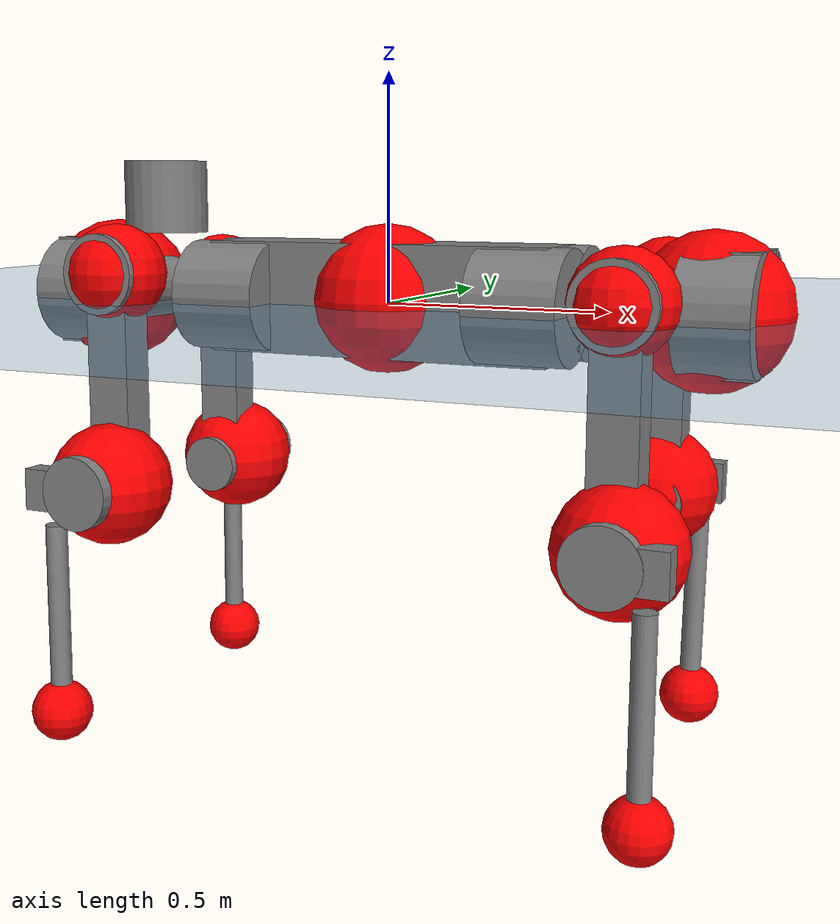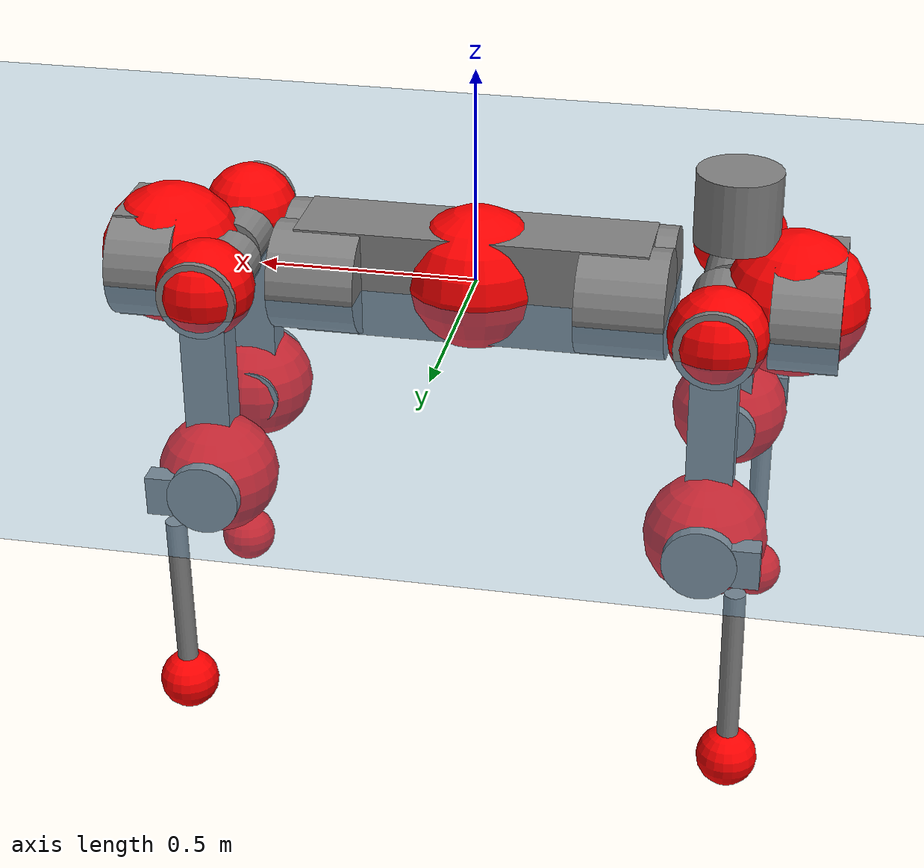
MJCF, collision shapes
<mujoco model="anymal_c">
  <compiler angle="radian" assetdir="assets" balanceinertia="true" inertiafromgeom="false"/>

  <option timestep="0.005" density="1.2" viscosity="2e-05"/>

  <size nkey="1"/>

  <visual>
    <quality shadowsize="8192"/>
    <map shadowclip="0.5"/>
  </visual>

  <default>
    <default class="/">
      <material specular="0" shininess="0.25"/>
      <geom contype="0" conaffinity="0" group="1" solref="-1000 -80"/>
      <site size="0.01 0.005 0.005" group="5"/>
      <general forcelimited="true" forcerange="-80 80" biastype="affine" gainprm="80" biasprm="0 -80 -2"/>
      <default class="anymal_c">
        <joint armature="0.01" damping="0.01" frictionloss="0.1"/>
        <default class="visual">
          <geom type="mesh" group="2"/>
          <default class="visual_zflip"/>
        </default>
        <default class="collision">
          <geom type="cylinder" group="3"/>
          <default class="foot">
            <geom size="0.03 0 0" type="sphere" condim="6" priority="1" friction="0.8 0.02 0.01" solimp="0.015 1 0.03"/>
          </default>
        </default>
      </default>
      <default class="reward_collision_sphere">
        <geom group="5" rgba="1 0 0 1"/>
      </default>
    </default>
  </default>

  <asset>
    <texture type="skybox" colorspace="auto" name="//unnamed_texture_0" builtin="gradient" rgb1="0.95 0.95 0.95" rgb2="0.95 0.95 0.95" width="100" height="600"/>
    <texture type="2d" colorspace="auto" name="texplane" builtin="checker" rgb1="0.345 0.575 0.748" rgb2="0.345 0.575 0.748" markrgb="1 1 1" width="512" height="512"/>
    <texture type="2d" colorspace="linear" name="base" file="base.png"/>
    <texture type="2d" colorspace="linear" name="top_shell" file="top_shell.png"/>
    <texture type="2d" colorspace="linear" name="bottom_shell" file="bottom_shell.png"/>
    <texture type="2d" colorspace="linear" name="remote" file="remote.png"/>
    <texture type="2d" colorspace="linear" name="hatch" file="hatch.png"/>
    <texture type="2d" colorspace="linear" name="handle" file="handle.png"/>
    <texture type="2d" colorspace="linear" name="face" file="face.png"/>
    <texture type="2d" colorspace="linear" name="battery" file="battery.png"/>
    <texture type="2d" colorspace="linear" name="lidar_cage" file="lidar_cage.png"/>
    <texture type="2d" colorspace="linear" name="depth_camera" file="depth_camera.png"/>
    <texture type="2d" colorspace="linear" name="wide_angle_camera" file="wide_angle_camera.png"/>
    <texture type="2d" colorspace="linear" name="lidar" file="lidar.png"/>
    <texture type="2d" colorspace="linear" name="drive" file="drive.png"/>
    <texture type="2d" colorspace="linear" name="hip_l" file="hip_l.png"/>
    <texture type="2d" colorspace="linear" name="shank_l" file="shank_l.png"/>
    <texture type="2d" colorspace="linear" name="foot" file="foot.png"/>
    <texture type="2d" colorspace="linear" name="thigh" file="thigh.png"/>
    <texture type="2d" colorspace="linear" name="shank_r" file="shank_r.png"/>
    <texture type="2d" colorspace="linear" name="hip_r" file="hip_r.png"/>
    <material name="MatPlane" class="/" texture="texplane" texuniform="true" texrepeat="2 2" specular="0.9" shininess="0.5"/>
    <material name="black_plastic" class="/" rgba="0.007 0.007 0.007 1"/>
    <material name="green" class="/" rgba="0.052 0.178 0.033 1"/>
    <material name="red" class="/" rgba="0.178 0.006 0.005 1"/>
    <material name="yellow" class="/" rgba="0.178 0.119 0.006 1"/>
    <material name="lwl" class="/" rgba="0.8 0.8 0.8 1"/>
    <material name="base" class="/" texture="base"/>
    <material name="top_shell" class="/" texture="top_shell"/>
    <material name="bottom_shell" class="/" texture="bottom_shell"/>
    <material name="hip_l" class="/" texture="hip_l"/>
    <material name="thigh" class="/" texture="thigh"/>
    <material name="shank_l" class="/" texture="shank_l"/>
    <material name="foot" class="/" texture="foot"/>
    <material name="hip_r" class="/" texture="hip_r"/>
    <material name="shank" class="/" texture="shank_r"/>
    <material name="hatch" class="/" texture="hatch"/>
    <material name="remote" class="/" texture="remote"/>
    <material name="handle" class="/" texture="handle"/>
    <material name="face" class="/" texture="face"/>
    <material name="depth_camera" class="/" texture="depth_camera"/>
    <material name="wide_angle_camera" class="/" texture="wide_angle_camera"/>
    <material name="battery" class="/" texture="battery"/>
    <material name="lidar_cage" class="/" texture="lidar_cage"/>
    <material name="lidar" class="/" texture="lidar"/>
    <material name="drive" class="/" texture="drive"/>
    <mesh name="base_0" class="/" file="base_0.obj"/>
    <mesh name="base_1" class="/" file="base_1.obj"/>
    <mesh name="base_2" class="/" file="base_2.obj"/>
    <mesh name="base_3" class="/" file="base_3.obj"/>
    <mesh name="base_4" class="/" file="base_4.obj"/>
    <mesh name="base_5" class="/" file="base_5.obj"/>
    <mesh name="top_shell" class="/" file="top_shell.obj"/>
    <mesh name="bottom_shell" class="/" file="bottom_shell.obj"/>
    <mesh name="remote" class="/" file="remote.obj"/>
    <mesh name="handle" class="/" file="handle.obj"/>
    <mesh name="face" class="/" file="face.obj"/>
    <mesh name="wide_angle_camera" class="/" file="wide_angle_camera.obj"/>
    <mesh name="depth_camera" class="/" file="depth_camera.obj"/>
    <mesh name="battery" class="/" file="battery.obj"/>
    <mesh name="lidar_cage" class="/" file="lidar_cage.obj"/>
    <mesh name="lidar" class="/" file="lidar.obj"/>
    <mesh name="drive" class="/" file="drive.obj"/>
    <mesh name="hip_l" class="/" file="hip_l.obj"/>
    <mesh name="thigh" class="/" file="thigh.obj"/>
    <mesh name="shank_l" class="/" file="shank_l.obj"/>
    <mesh name="foot" class="/" file="foot.obj"/>
    <mesh name="hip_r" class="/" file="hip_r.obj"/>
    <mesh name="hatch" class="/" file="hatch.obj"/>
    <mesh name="shank_r" class="/" file="shank_r.obj"/>
  </asset>

  <worldbody>
    <geom name="floor" class="/" size="100 100 0.125" type="plane" group="0" material="MatPlane"/>
    <light name="toplight_shadow" class="/" pos="0 0 5" dir="0.0990148 0.0990148 -0.990148" type="directional" ambient="0.04 0.04 0.04" diffuse="0.55 0.55 0.55" specular="0.12 0.12 0.12"/>
    <light name="toplight_fill" class="/" pos="0 0 5" dir="0.0990148 0.0990148 -0.990148" type="directional" castshadow="false" ambient="0.04 0.04 0.04" diffuse="0.3 0.3 0.3" specular="0.08 0.08 0.08"/>
    <body name="trunk" childclass="anymal_c" pos="-0.0024907 -0.000657639 0.0109518" quat="0.999999 -0.000619959 0.000538307 -0.00120398">
      <inertial pos="0.0160394 0.0137149 0.0747384" quat="0.507478 0.518805 0.474035 0.498596" mass="49.4796" diaginertia="4.81306 0.298113 2.21187"/>
      <joint name="//unnamed_joint_0" type="free" armature="0" damping="0" frictionloss="0"/>
      <geom name="//unnamed_geom_1" class="visual" material="green" mesh="base_0"/>
      <geom name="//unnamed_geom_2" class="visual" material="yellow" mesh="base_1"/>
      <geom name="//unnamed_geom_3" class="visual" material="red" mesh="base_2"/>
      <geom name="//unnamed_geom_4" class="visual" material="black_plastic" mesh="base_3"/>
      <geom name="//unnamed_geom_5" class="visual" material="lwl" mesh="base_4"/>
      <geom name="//unnamed_geom_6" class="visual" material="base" mesh="base_5"/>
      <geom name="trunk_1" class="collision" size="0.399257 0.0963723 0.123907" type="box"/>
      <geom name="trunk_2" class="collision" size="0.123907 0.0998142" pos="0.345703 0.0629215 0" quat="0.707107 0 0.707107 0"/>
      <geom name="trunk_3" class="collision" size="0.123907 0.0998142" pos="-0.345703 0.0629215 0" quat="0.707107 0 0.707107 0"/>
      <geom name="trunk_4" class="collision" size="0.123907 0.0998142" pos="0.345703 -0.0629215 0" quat="0.707107 0 0.707107 0"/>
      <geom name="trunk_5" class="collision" size="0.123907 0.0998142" pos="-0.345703 -0.0629215 0" quat="0.707107 0 0.707107 0"/>
      <geom name="//unnamed_geom_12" class="visual" material="top_shell" mesh="top_shell"/>
      <geom name="//unnamed_geom_13" class="visual" material="bottom_shell" mesh="bottom_shell"/>
      <geom name="//unnamed_geom_14" class="visual" material="remote" mesh="remote"/>
      <geom name="//unnamed_geom_15" class="visual" material="handle" mesh="handle"/>
      <geom name="//unnamed_geom_16" class="visual" pos="0.658823 0 0" quat="1 0 0 0" material="face" mesh="face"/>
      <geom name="trunk_6" class="collision" size="0.0757211 0.0963723 0.123907" pos="0.746242 0 0" type="box"/>
      <geom name="//unnamed_geom_18" class="collision" size="0.123907 0.0757211" pos="0.746242 0.0629215 0" quat="0.707107 0 0.707107 0"/>
      <geom name="//unnamed_geom_19" class="collision" size="0.123907 0.0757211" pos="0.746242 -0.0629215 0" quat="0.707107 0 0.707107 0"/>
      <geom name="//unnamed_geom_20" class="visual" pos="0.733767 0 -0.0483431" quat="0.965926 0 0.258819 0" material="depth_camera" mesh="depth_camera"/>
      <geom name="//unnamed_geom_21" class="visual" pos="0.815383 0 0.0245796" material="wide_angle_camera" mesh="wide_angle_camera"/>
      <geom name="//unnamed_geom_22" class="visual_zflip" pos="-0.658823 0 0" quat="0 0 0 1" material="face" mesh="face"/>
      <geom name="trunk_7" class="collision" size="0.0757211 0.0963723 0.123907" pos="-0.746242 0 0" quat="0 0 0 1" type="box"/>
      <geom name="//unnamed_geom_24" class="collision" size="0.123907 0.0757211" pos="-0.746242 -0.0629215 0" quat="0 -0.707107 0 0.707107"/>
      <geom name="//unnamed_geom_25" class="collision" size="0.123907 0.0757211" pos="-0.746242 0.0629215 0" quat="0 -0.707107 0 0.707107"/>
      <geom name="//unnamed_geom_26" class="visual" pos="-0.733767 0 -0.0483431" quat="0 -0.258819 0 0.965926" material="depth_camera" mesh="depth_camera"/>
      <geom name="//unnamed_geom_27" class="visual_zflip" pos="-0.815383 0 0.0245796" quat="0 0 0 1" material="wide_angle_camera" mesh="wide_angle_camera"/>
      <geom name="//unnamed_geom_28" class="visual" material="battery" mesh="battery"/>
      <geom name="//unnamed_geom_29" class="visual" pos="0 0.0596688 0.047299" quat="0.683013 -0.183013 0.183013 0.683013" material="depth_camera" mesh="depth_camera"/>
      <geom name="//unnamed_geom_30" class="visual" pos="0 -0.0596688 0.047299" quat="0.683013 0.183013 0.183013 -0.683013" material="depth_camera" mesh="depth_camera"/>
      <geom name="//unnamed_geom_31" class="visual" pos="-0.578556 0 0.120681" quat="1 0 0 0" material="lidar_cage" mesh="lidar_cage"/>
      <geom name="trunk_8" class="collision" size="0.0963723 0.0826048" pos="-0.578556 0 0.219197"/>
      <geom name="//unnamed_geom_33" class="visual" pos="-0.578556 -0.000271303 0.233482" quat="0.707107 0 0 -0.707107" material="lidar" mesh="lidar"/>
      <geom name="//unnamed_geom_34" class="visual" pos="0.476673 0.0937473 -1.28176e-08" quat="0.258819 0.965926 0 0" material="drive" mesh="drive"/>
      <geom name="//unnamed_geom_35" class="visual" pos="0.476673 -0.0937473 1.28176e-08" quat="0.258819 -0.965926 0 0" material="drive" mesh="drive"/>
      <geom name="//unnamed_geom_36" class="visual" pos="-0.476673 0.0937473 1.28176e-08" quat="0 0 0.965926 -0.258819" material="drive" mesh="drive"/>
      <geom name="//unnamed_geom_37" class="visual" pos="-0.476673 -0.0937473 -1.28176e-08" quat="0 0 -0.965926 -0.258819" material="drive" mesh="drive"/>
      <geom name="//unnamed_geom_38" class="visual" pos="0.184375 0 0.11986" quat="1 0 0 0" material="hatch" mesh="hatch"/>
      <geom name="//unnamed_geom_39" class="reward_collision_sphere" size="0.16521"/>
      <geom name="//unnamed_geom_40" class="reward_collision_sphere" size="0.16521" pos="0.715248 0 0"/>
      <geom name="//unnamed_geom_41" class="reward_collision_sphere" size="0.16521" pos="-0.715248 0 0"/>
      <site name="imu" pos="0.474501 0.0246064 0.00787519" size="0.0137675"/>
      <camera name="track" pos="0 -1.79776 0" quat="0.707107 0.707107 0 0" mode="trackcom"/>
      <camera name="ego_camera" pos="0.715248 0 -0.065677" quat="-0.5 -0.5 0.5 0.5"/>
      <body name="LF_HIP" pos="0.473302 0.100418 0.000873746" quat="0.259505 0.965733 0.00410275 0.000517286">
        <inertial pos="0.0762005 -0.00522313 -0.0117035" quat="-0.152525 0.679819 -0.124591 0.706441" mass="8.68684" diaginertia="0.0714285 0.00294952 0.0367877"/>
        <joint name="LF_HAA" pos="0 0 0" axis="0.998288 -0.050087 -0.0302044" stiffness="0.0291103" range="-0.678573 0.305304" armature="0.00349901" damping="0.0783074" frictionloss="0.166243"/>
        <geom name="//unnamed_geom_42" class="visual" pos="0 -0.000754003 0.000123844" quat="0.258819 -0.965926 0 0" material="hip_l" mesh="hip_l"/>
        <geom name="//unnamed_geom_43" class="visual" pos="0.0952075 -0.106536 -0.0670045" quat="0.183013 -0.683013 0.683013 0.183013" material="drive" mesh="drive"/>
        <geom name="//unnamed_geom_44" class="collision" size="0.0688374 0.0963723" pos="0.0952075 -0.0107504 -0.0113375" quat="-0.353553 -0.612372 0.612372 -0.353553"/>
        <body name="LF_THIGH" pos="0.0943869 -0.0629996 -0.0690655" quat="0.182041 -0.683294 0.682899 0.183356">
          <inertial pos="0.0414645 -0.000191619 -0.417565" quat="0.992424 0.0226176 -0.0823516 0.0883195" mass="6.84696" diaginertia="0.352331 0.0170613 0.0511646"/>
          <joint name="LF_HFE" pos="0 0 0" axis="0.996992 -0.0356333 -0.0688265" range="-3.03539 3.05535" armature="0.0112717" damping="0.0365564" frictionloss="0.231445"/>
          <geom name="//unnamed_geom_45" class="visual" pos="0.0137395 2.16502e-05 0" quat="0.707107 0 0 -0.707107" material="thigh" mesh="thigh"/>
          <geom name="//unnamed_geom_46" class="collision" size="0.0894886 0.0550699" pos="0.0635776 0 0" quat="0.5 0.5 -0.5 -0.5"/>
          <geom name="//unnamed_geom_47" class="collision" size="0.051628 0.0413024 0.194554" pos="0.0476832 0 -0.232027" quat="0.707107 0 0 -0.707107" type="box"/>
          <geom name="//unnamed_geom_48" class="visual" pos="0.159421 0 -0.467948" quat="1 0 0 0" material="drive" mesh="drive"/>
          <geom name="//unnamed_geom_49" class="collision" size="0.0688374 0.0963723" pos="0.04816 0 -0.467948" quat="0.707107 0 0.707107 0"/>
          <geom name="//unnamed_geom_50" class="reward_collision_sphere" size="0.11014" pos="0.039736 0 0"/>
          <body name="LF_SHANK" pos="0.146927 0.0128841 -0.452154" quat="0.999981 0.00623422 -7.84402e-05 -0.000130741">
            <inertial pos="0.0137058 -0.0557515 -0.12723" quat="0.992182 -0.124469 0.00879602 -0.0021454" mass="1.74021" diaginertia="0.115801 0.00540819 0.0157527"/>
            <joint name="LF_KFE" pos="0 0 0" axis="0.999372 0.0180471 0.0304793" stiffness="0.00443888" range="-2.92954 2.99676" armature="0.00819139" damping="0.0700168" frictionloss="0.0678265"/>
            <geom name="//unnamed_geom_51" class="visual" pos="0.00448014 0.0238883 0" quat="0.707107 0 0 -0.707107" material="shank_l" mesh="shank_l"/>
            <geom name="LF_kfe_act" class="collision" size="0.0826048 0.0275349" pos="0.0317888 0 0" quat="0.5 0.5 -0.5 -0.5"/>
            <geom name="//unnamed_geom_53" class="collision" size="0.0791616 0.0464652 0.0261582" pos="0.0317888 -0.0516846 0" quat="0.5 0.5 -0.5 -0.5" type="box"/>
            <geom name="//unnamed_geom_54" class="visual" pos="0.0207411 -0.0713581 -0.554921" quat="0.382683 0 0 -0.92388" material="foot" mesh="foot"/>
            <geom name="LF_calf" class="collision" size="0.0240931 0.194468" pos="0.0207422 -0.0790563 -0.277461" quat="0.707107 0 0 -0.707107"/>
            <geom name="LF_foot" class="foot" size="0.0482285" pos="0.0207422 -0.0790563 -0.517978" quat="0.707107 0 0 -0.707107"/>
            <geom name="//unnamed_geom_57" class="reward_collision_sphere" size="0.137675" pos="-0.079472 0 0"/>
            <geom name="//unnamed_geom_58" class="reward_collision_sphere" size="0.0688374" pos="0.0207422 -0.0790563 -0.517978"/>
            <site name="LF_foot" class="foot" pos="0.0207422 -0.0790563 -0.517978" quat="0.707107 0 0 -0.707107" size="0.0137675"/>
          </body>
        </body>
      </body>
      <body name="RF_HIP" pos="0.487013 -0.0964379 0.00254374" quat="0.258576 -0.965991 0.000143245 -0.00011944">
        <inertial pos="0.0767416 0.0165837 -0.0158623" quat="0.134519 0.677961 0.126521 0.711523" mass="6.76102" diaginertia="0.0570801 0.00222931 0.0347155"/>
        <joint name="RF_HAA" pos="0 0 0" axis="0.999412 -0.0320525 0.0121445" stiffness="0.0315585" range="-0.208641 0.644474" armature="0.0224961" damping="0.0100472" frictionloss="0.232347"/>
        <geom name="//unnamed_geom_59" class="visual" pos="0 0.000753997 0.000123844" quat="0.258819 0.965926 0 0" material="hip_r" mesh="hip_r"/>
        <geom name="//unnamed_geom_60" class="visual" pos="0.0952074 0.106536 -0.0670045" quat="0.183013 0.683013 0.683013 -0.183013" material="drive" mesh="drive"/>
        <geom name="//unnamed_geom_61" class="collision" size="0.0688374 0.0963723" pos="0.0952075 0.0107504 -0.0113375" quat="-0.353553 0.612372 0.612372 0.353553"/>
        <body name="RF_THIGH" pos="0.103053 0.0507268 -0.060224" quat="0.181546 0.68345 0.683348 -0.181587">
          <inertial pos="0.0489714 -0.003569 -0.401009" quat="0.984284 -0.00858179 -0.0854125 0.154326" mass="10.8967" diaginertia="0.341115 0.0175818 0.0514983"/>
          <joint name="RF_HFE" pos="0 0 0" axis="0.998183 0.043731 0.0414518" stiffness="0.0148911" range="-3.45228 2.92926" armature="0.0124975" damping="0.0719668" frictionloss="0.0218356"/>
          <geom name="//unnamed_geom_62" class="visual" pos="0.0137395 2.16502e-05 0" quat="0.707107 0 0 -0.707107" material="thigh" mesh="thigh"/>
          <geom name="//unnamed_geom_63" class="collision" size="0.0894886 0.0550699" pos="0.0635776 0 0" quat="0.5 0.5 0.5 0.5"/>
          <geom name="//unnamed_geom_64" class="collision" size="0.051628 0.0413024 0.194554" pos="0.0476832 0 -0.232027" quat="0.707107 0 0 0.707107" type="box"/>
          <geom name="//unnamed_geom_65" class="visual" pos="0.159421 0 -0.467948" quat="1 0 0 0" material="drive" mesh="drive"/>
          <geom name="//unnamed_geom_66" class="collision" size="0.0688374 0.0963723" pos="0.04816 0 -0.467948" quat="0.707107 0 0.707107 0"/>
          <geom name="//unnamed_geom_67" class="reward_collision_sphere" size="0.11014" pos="0.039736 0 0"/>
          <body name="RF_SHANK" pos="0.145812 0.0145985 -0.475295" quat="0.999999 0.000248864 0.000539954 -0.000929884">
            <inertial pos="0.00857183 0.0567983 -0.146909" quat="0.987714 0.155856 -0.0111568 0.00227698" mass="1.58955" diaginertia="0.121853 0.00619716 0.0129312"/>
            <joint name="RF_KFE" pos="0 0 0" axis="0.999948 -4.76444e-05 0.0101686" range="-2.94686 2.93598" armature="0.0180662" damping="0" frictionloss="0.242182"/>
            <geom name="//unnamed_geom_68" class="visual" pos="0.00448012 -0.0238883 0" quat="0.707107 0 0 0.707107" material="shank" mesh="shank_r"/>
            <geom name="RF_kfe_act" class="collision" size="0.0826048 0.0275349" pos="0.0317888 0 0" quat="0.5 0.5 0.5 0.5"/>
            <geom name="//unnamed_geom_70" class="collision" size="0.0791616 0.0464652 0.0261582" pos="0.0317888 0.0516846 0" quat="0.5 0.5 0.5 0.5" type="box"/>
            <geom name="//unnamed_geom_71" class="visual" pos="0.0207433 0.0713581 -0.554921" quat="0.382683 0 0 0.92388" material="foot" mesh="foot"/>
            <geom name="RF_calf" class="collision" size="0.0240931 0.194468" pos="0.0207422 0.0790563 -0.277461" quat="0.707107 0 0 0.707107"/>
            <geom name="RF_foot" class="foot" size="0.0675498" pos="0.0207422 0.0790563 -0.517978" quat="0.707107 0 0 0.707107"/>
            <geom name="//unnamed_geom_74" class="reward_collision_sphere" size="0.137675" pos="-0.079472 0 0"/>
            <geom name="//unnamed_geom_75" class="reward_collision_sphere" size="0.0688374" pos="0.0207422 0.0790563 -0.517978"/>
            <site name="RF_foot" class="foot" pos="0.0207422 0.0790563 -0.517978" quat="0.707107 0 0 0.707107" size="0.0137675"/>
          </body>
        </body>
      </body>
      <body name="LH_HIP" pos="-0.46114 0.0857615 -0.0012701" quat="-0.000730497 -0.00168865 0.966492 -0.256689">
        <inertial pos="0.0822138 -0.000384289 -0.015346" quat="0.113417 0.711765 0.132164 0.680485" mass="7.21281" diaginertia="0.0748713 0.00271632 0.0534715"/>
        <joint name="LH_HAA" pos="0 0 0" axis="0.999437 0.0272829 -0.0195329" stiffness="0.032949" range="-0.629725 1.05644" armature="0.0240436" damping="0.0599316" frictionloss="0.147533"/>
        <geom name="//unnamed_geom_76" class="visual" pos="0 0.000753997 0.000123844" quat="-0.258819 -0.965926 0 0" material="hip_r" mesh="hip_r"/>
        <geom name="//unnamed_geom_77" class="visual" pos="0.0952074 0.106536 -0.0670045" quat="0.183013 0.683013 0.683013 -0.183013" material="drive" mesh="drive"/>
        <geom name="//unnamed_geom_78" class="collision" size="0.0688374 0.0963723" pos="0.0952075 0.0107504 -0.0113375" quat="-0.353553 0.612372 0.612372 0.353553"/>
        <body name="LH_THIGH" pos="0.105476 0.0817553 -0.0635619" quat="0.182931 0.682974 0.683015 -0.183232">
          <inertial pos="0.0499974 -0.0124735 -0.399682" quat="0.992079 0.00218487 -0.0793363 0.0973683" mass="7.99929" diaginertia="0.304856 0.0197924 0.046429"/>
          <joint name="LH_HFE" pos="0 0 0" axis="0.99793 -0.039634 0.0506384" range="-3.14902 3.19507" armature="0.0196807" damping="0.0497965" frictionloss="0.091601"/>
          <geom name="//unnamed_geom_79" class="visual" pos="0.0137395 2.16502e-05 0" quat="0.707107 0 0 -0.707107" material="thigh" mesh="thigh"/>
          <geom name="//unnamed_geom_80" class="collision" size="0.0894886 0.0550699" pos="0.0635776 0 0" quat="0.5 0.5 -0.5 -0.5"/>
          <geom name="//unnamed_geom_81" class="collision" size="0.051628 0.0413024 0.194554" pos="0.0476832 0 -0.232027" quat="0.707107 0 0 -0.707107" type="box"/>
          <geom name="//unnamed_geom_82" class="visual" pos="0.159421 0 -0.467948" quat="1 0 0 0" material="drive" mesh="drive"/>
          <geom name="//unnamed_geom_83" class="collision" size="0.0688374 0.0963723" pos="0.04816 0 -0.467948" quat="0.707107 0 0.707107 0"/>
          <geom name="//unnamed_geom_84" class="reward_collision_sphere" size="0.11014" pos="0.039736 0 0"/>
          <body name="LH_SHANK" pos="0.169828 -0.00140875 -0.460907" quat="0.999993 0.00306768 -0.00197746 0.000199581">
            <inertial pos="0.00945903 0.0546366 -0.131446" quat="0.997222 0.0444263 -0.0387054 0.0455594" mass="1.53058" diaginertia="0.100595 0.00521423 0.0160242"/>
            <joint name="LH_KFE" pos="0 0 0" axis="0.998304 0.0480175 -0.0329139" range="-3.16062 3.15515" armature="0.0213581" damping="0.0224101" frictionloss="0.0658766"/>
            <geom name="//unnamed_geom_85" class="visual" pos="0.00448012 -0.0238883 0" quat="-0.707107 0 0 -0.707107" material="shank" mesh="shank_r"/>
            <geom name="LH_kfe_act" class="collision" size="0.0826048 0.0275349" pos="0.0317888 0 0" quat="0.5 0.5 -0.5 -0.5"/>
            <geom name="//unnamed_geom_87" class="collision" size="0.0791616 0.0464652 0.0261582" pos="0.0317888 0.0516846 0" quat="0.5 0.5 -0.5 -0.5" type="box"/>
            <geom name="//unnamed_geom_88" class="visual" pos="0.0207433 0.0713581 -0.554921" quat="-0.382683 0 0 -0.92388" material="foot" mesh="foot"/>
            <geom name="LH_calf" class="collision" size="0.0240931 0.194468" pos="0.0207422 0.0790563 -0.277461" quat="0.707107 0 0 -0.707107"/>
            <geom name="LH_foot" class="foot" size="0.0160884" pos="0.0207422 0.0790563 -0.517978" quat="0.707107 0 0 -0.707107"/>
            <geom name="//unnamed_geom_91" class="reward_collision_sphere" size="0.137675" pos="-0.079472 0 0"/>
            <geom name="//unnamed_geom_92" class="reward_collision_sphere" size="0.0688374" pos="0.0207422 0.0790563 -0.517978"/>
            <site name="LH_foot" class="foot" pos="0.0207422 0.0790563 -0.517978" quat="0.707107 0 0 -0.707107" size="0.0137675"/>
          </body>
        </body>
      </body>
      <body name="RH_HIP" pos="-0.478375 -0.0792804 0.00796389" quat="-0.00211047 -0.00404837 -0.966914 -0.255062">
        <inertial pos="0.104461 -0.013104 -0.0268933" quat="-0.139174 0.718535 -0.11243 0.672085" mass="8.07519" diaginertia="0.0658042 0.00317735 0.0517635"/>
        <joint name="RH_HAA" pos="0 0 0" axis="0.999993 -0.00353851 0.000908645" stiffness="0.0422945" range="-0.461929 0.179075" armature="0.0143322" damping="0.0588648" frictionloss="0.139634"/>
        <geom name="//unnamed_geom_93" class="visual" pos="0 -0.000754003 0.000123844" quat="-0.258819 0.965926 0 0" material="hip_l" mesh="hip_l"/>
        <geom name="//unnamed_geom_94" class="visual" pos="0.0952075 -0.106536 -0.0670045" quat="-0.183013 0.683013 -0.683013 -0.183013" material="drive" mesh="drive"/>
        <geom name="//unnamed_geom_95" class="collision" size="0.0688374 0.0963723" pos="0.0952075 -0.0107504 -0.0113375" quat="0.353553 0.612372 -0.612372 0.353553"/>
        <body name="RH_THIGH" pos="0.0933468 -0.056851 -0.0831562" quat="-0.182204 0.6835 -0.68294 -0.18227">
          <inertial pos="0.037828 0.00481944 -0.407534" quat="0.993074 -0.0060855 -0.0824774 0.0834562" mass="11.5063" diaginertia="0.430367 0.0207981 0.0566011"/>
          <joint name="RH_HFE" pos="0 0 0" axis="0.998017 -0.0467242 0.0421676" stiffness="0.00795651" range="-3.17646 3.15682" armature="0.0188833" damping="0.0429495" frictionloss="0.138458"/>
          <geom name="//unnamed_geom_96" class="visual" pos="0.0137395 2.16502e-05 0" quat="0.707107 0 0 -0.707107" material="thigh" mesh="thigh"/>
          <geom name="//unnamed_geom_97" class="collision" size="0.0894886 0.0550699" pos="0.0635776 0 0" quat="0.5 0.5 0.5 0.5"/>
          <geom name="//unnamed_geom_98" class="collision" size="0.051628 0.0413024 0.194554" pos="0.0476832 0 -0.232027" quat="0.707107 0 0 0.707107" type="box"/>
          <geom name="//unnamed_geom_99" class="visual" pos="0.159421 0 -0.467948" quat="1 0 0 0" material="drive" mesh="drive"/>
          <geom name="//unnamed_geom_100" class="collision" size="0.0688374 0.0963723" pos="0.04816 0 -0.467948" quat="0.707107 0 0.707107 0"/>
          <geom name="//unnamed_geom_101" class="reward_collision_sphere" size="0.11014" pos="0.039736 0 0"/>
          <body name="RH_SHANK" pos="0.173428 0.00474174 -0.471895" quat="0.999991 0.000158872 -0.00420669 -0.00035144">
            <inertial pos="0.0159088 -0.0552552 -0.13431" quat="0.997699 -0.0588296 0.0282536 -0.0183926" mass="1.43552" diaginertia="0.111835 0.00443136 0.0127567"/>
            <joint name="RH_KFE" pos="0 0 0" axis="0.999974 0.00638785 -0.00346462" range="-3.05152 3.26305" armature="0.0242748" damping="0" frictionloss="0.139627"/>
            <geom name="//unnamed_geom_102" class="visual" pos="0.00448014 0.0238883 0" quat="0.707107 0 0 -0.707107" material="shank_l" mesh="shank_l"/>
            <geom name="RH_kfe_act" class="collision" size="0.0826048 0.0275349" pos="0.0317888 0 0" quat="0.5 0.5 0.5 0.5"/>
            <geom name="//unnamed_geom_104" class="collision" size="0.0791616 0.0464652 0.0261582" pos="0.0317888 -0.0516846 0" quat="0.5 0.5 0.5 0.5" type="box"/>
            <geom name="//unnamed_geom_105" class="visual" pos="0.0207411 -0.0713581 -0.554921" quat="0.382683 0 0 -0.92388" material="foot" mesh="foot"/>
            <geom name="RH_calf" class="collision" size="0.0240931 0.194468" pos="0.0207422 -0.0790563 -0.277461" quat="0.707107 0 0 0.707107"/>
            <geom name="RH_foot" class="foot" size="0.0577384" pos="0.0207422 -0.0790563 -0.517978" quat="0.707107 0 0 0.707107"/>
            <geom name="//unnamed_geom_108" class="reward_collision_sphere" size="0.137675" pos="-0.079472 0 0"/>
            <geom name="//unnamed_geom_109" class="reward_collision_sphere" size="0.0688374" pos="0.0207422 -0.0790563 -0.517978"/>
            <site name="RH_foot" class="foot" pos="0.0207422 -0.0790563 -0.517978" quat="0.707107 0 0 0.707107" size="0.0137675"/>
          </body>
        </body>
      </body>
    </body>
  </worldbody>

  <contact>
    <pair class="/" geom1="floor" geom2="LF_foot" name="//unnamed_contact_0"/>
    <pair class="/" geom1="floor" geom2="RF_foot" name="//unnamed_contact_1"/>
    <pair class="/" geom1="floor" geom2="LH_foot" name="//unnamed_contact_2"/>
    <pair class="/" geom1="floor" geom2="RH_foot" name="//unnamed_contact_3"/>
  </contact>

  <actuator>
    <general name="LF_HAA" class="/" joint="LF_HAA" forcerange="-126.156 126.156" gainprm="82.5989" biasprm="0 -82.5989 -3.25986"/>
    <general name="LF_HFE" class="/" joint="LF_HFE" forcerange="-149.047 149.047" gainprm="82.5989" biasprm="0 -82.5989 -3.25986"/>
    <general name="LF_KFE" class="/" joint="LF_KFE" forcerange="-131.978 131.978" gainprm="82.5989" biasprm="0 -82.5989 -3.25986"/>
    <general name="RF_HAA" class="/" joint="RF_HAA" forcerange="-151.486 151.486" gainprm="82.5989" biasprm="0 -82.5989 -3.25986"/>
    <general name="RF_HFE" class="/" joint="RF_HFE" forcerange="-76.8854 76.8854" gainprm="82.5989" biasprm="0 -82.5989 -3.25986"/>
    <general name="RF_KFE" class="/" joint="RF_KFE" forcerange="-165.548 165.548" gainprm="82.5989" biasprm="0 -82.5989 -3.25986"/>
    <general name="LH_HAA" class="/" joint="LH_HAA" forcerange="-115.071 115.071" gainprm="82.5989" biasprm="0 -82.5989 -3.25986"/>
    <general name="LH_HFE" class="/" joint="LH_HFE" forcerange="-166.434 166.434" gainprm="82.5989" biasprm="0 -82.5989 -3.25986"/>
    <general name="LH_KFE" class="/" joint="LH_KFE" forcerange="-130.663 130.663" gainprm="82.5989" biasprm="0 -82.5989 -3.25986"/>
    <general name="RH_HAA" class="/" joint="RH_HAA" forcerange="-136.5 136.5" gainprm="82.5989" biasprm="0 -82.5989 -3.25986"/>
    <general name="RH_HFE" class="/" joint="RH_HFE" forcerange="-172.301 172.301" gainprm="82.5989" biasprm="0 -82.5989 -3.25986"/>
    <general name="RH_KFE" class="/" joint="RH_KFE" forcerange="-57.3697 57.3697" gainprm="82.5989" biasprm="0 -82.5989 -3.25986"/>
  </actuator>

  <sensor>
    <gyro site="imu" name="imu_angular_velocity"/>
    <velocimeter site="imu" name="imu_linear_velocity"/>
    <framelinvel objtype="site" objname="LF_foot" name="LF_foot_global_linear_velocity"/>
    <framelinvel objtype="site" objname="RF_foot" name="RF_foot_global_linear_velocity"/>
    <framelinvel objtype="site" objname="LH_foot" name="LH_foot_global_linear_velocity"/>
    <framelinvel objtype="site" objname="RH_foot" name="RH_foot_global_linear_velocity"/>
  </sensor>

  <keyframe>
    <key name="home" qpos="0 0 0.55 1 0 0 0 0 0.4 -0.8 0 -0.4 0.8 0 -0.4 0.8 0 0.4 -0.8"/>
  </keyframe>
</mujoco>
